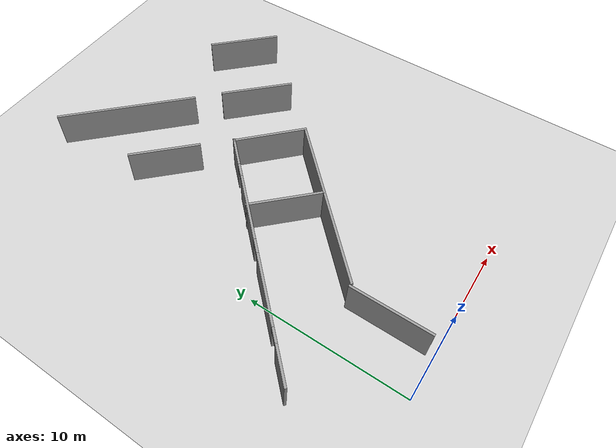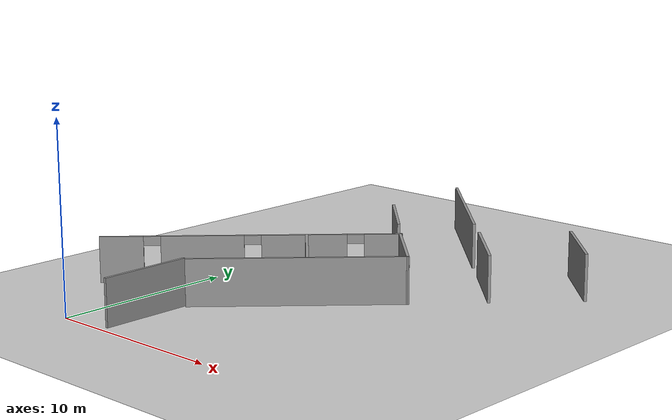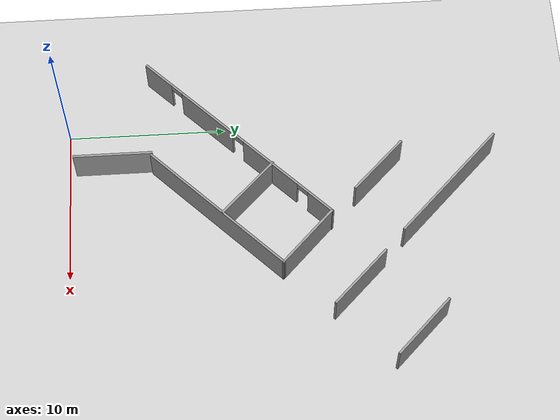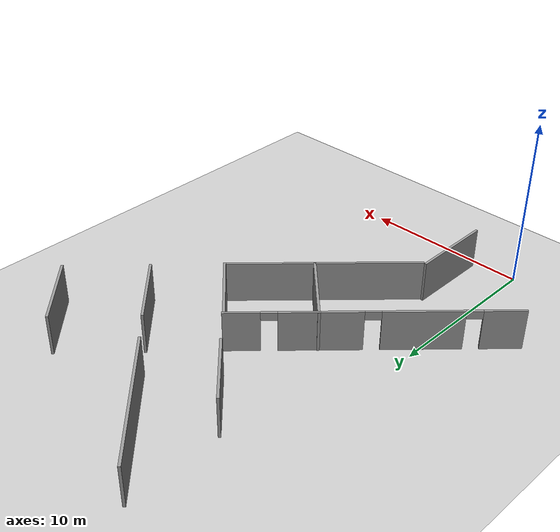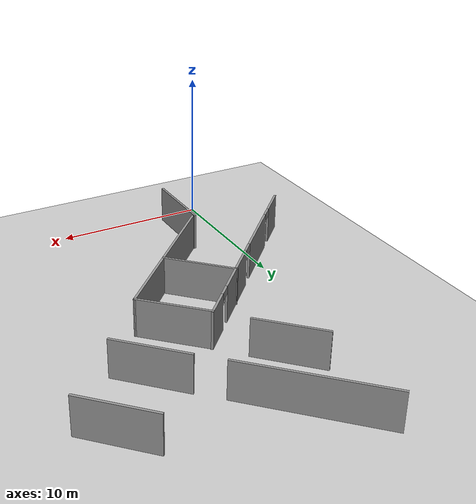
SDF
<sdf version="1.6">
 <world name="default">
  <model name="ground_plane">
   <static>1</static>
   <link name="link">
    <collision name="collision">
     <geometry><plane><normal>0 0 1</normal><size>100 100</size></plane></geometry>
     <surface>
      <contact><collide_bitmask>65535</collide_bitmask></contact>
      <friction><ode><mu>100</mu><mu2>50</mu2></ode></friction>
     </surface>
    </collision>
    <visual name="visual">
     <cast_shadows>0</cast_shadows>
     <geometry><plane><normal>0 0 1</normal><size>100 100</size></plane></geometry>
     <material>
      <script><uri>file://media/materials/scripts/gazebo.material</uri><name>Gazebo/Grey</name></script>
     </material>
    </visual>
   </link>
  </model>
  <model name="Level_1_with_doors">
   <link name="Wall_123">
    <pose>-2.14249 -19.6173 0 0 -0 1.5708</pose>
    <visual name="Wall_123_Visual">
     <pose>0 0 1.25 0 -0 0</pose>
     <geometry><box><size>5 0.15 2.5</size></box></geometry>
     <material>
      <script><uri>file://media/materials/scripts/gazebo.material</uri><name>Gazebo/Grey</name></script>
      <ambient>1 1 1 1</ambient>
      <shader type="pixel"/>
     </material>
     <meta><layer>0</layer></meta>
    </visual>
    <collision name="Wall_123_Collision">
     <pose>0 0 1.25 0 -0 0</pose>
     <geometry><box><size>5 0.15 2.5</size></box></geometry>
     <surface>
      <friction>
       <ode><mu>1</mu><mu2>1</mu2><fdir1>0 0 0</fdir1><slip1>0</slip1><slip2>0</slip2></ode>
       <torsional>
        <coefficient>1</coefficient>
        <patch_radius>0</patch_radius>
        <surface_radius>0</surface_radius>
        <use_patch_radius>1</use_patch_radius>
        <ode><slip>0</slip></ode>
       </torsional>
      </friction>
      <bounce><restitution_coefficient>0</restitution_coefficient><threshold>1e+06</threshold></bounce>
      <contact>
       <collide_without_contact>0</collide_without_contact>
       <collide_without_contact_bitmask>1</collide_without_contact_bitmask>
       <collide_bitmask>1</collide_bitmask>
       <ode>
        <soft_cfm>0</soft_cfm>
        <soft_erp>0.2</soft_erp>
        <kp>1e+13</kp>
        <kd>1</kd>
        <max_vel>0.01</max_vel>
        <min_depth>0</min_depth>
       </ode>
       <bullet>
        <split_impulse>1</split_impulse>
        <split_impulse_penetration_threshold>-0.01</split_impulse_penetration_threshold>
        <soft_cfm>0</soft_cfm>
        <soft_erp>0.2</soft_erp>
        <kp>1e+13</kp>
        <kd>1</kd>
       </bullet>
      </contact>
     </surface>
    </collision>
   </link>
   <link name="Wall_23">
    <pose>0.985639 1.35399 0 0 0 -0.780433</pose>
    <visual name="Wall_23_Visual">
     <pose>0 0 1.25 0 -0 0</pose>
     <geometry><box><size>8.95638 0.15 2.5</size></box></geometry>
     <material>
      <script><uri>file://media/materials/scripts/gazebo.material</uri><name>Gazebo/Grey</name></script>
      <ambient>1 1 1 1</ambient>
      <shader type="pixel"/>
     </material>
     <meta><layer>0</layer></meta>
    </visual>
    <collision name="Wall_23_Collision">
     <pose>0 0 1.25 0 -0 0</pose>
     <geometry><box><size>8.95638 0.15 2.5</size></box></geometry>
     <surface>
      <friction>
       <ode><mu>1</mu><mu2>1</mu2><fdir1>0 0 0</fdir1><slip1>0</slip1><slip2>0</slip2></ode>
       <torsional>
        <coefficient>1</coefficient>
        <patch_radius>0</patch_radius>
        <surface_radius>0</surface_radius>
        <use_patch_radius>1</use_patch_radius>
        <ode><slip>0</slip></ode>
       </torsional>
      </friction>
      <bounce><restitution_coefficient>0</restitution_coefficient><threshold>1e+06</threshold></bounce>
      <contact>
       <collide_without_contact>0</collide_without_contact>
       <collide_without_contact_bitmask>1</collide_without_contact_bitmask>
       <collide_bitmask>1</collide_bitmask>
       <ode>
        <soft_cfm>0</soft_cfm>
        <soft_erp>0.2</soft_erp>
        <kp>1e+13</kp>
        <kd>1</kd>
        <max_vel>0.01</max_vel>
        <min_depth>0</min_depth>
       </ode>
       <bullet>
        <split_impulse>1</split_impulse>
        <split_impulse_penetration_threshold>-0.01</split_impulse_penetration_threshold>
        <soft_cfm>0</soft_cfm>
        <soft_erp>0.2</soft_erp>
        <kp>1e+13</kp>
        <kd>1</kd>
       </bullet>
      </contact>
     </surface>
    </collision>
   </link>
   <link name="Wall_35">
    <pose>7.13868 -4.69114 0 0 -0 2.35619</pose>
    <visual name="Wall_35_Visual">
     <pose>0 0 1.25 0 -0 0</pose>
     <geometry><box><size>4.75 0.15 2.5</size></box></geometry>
     <material>
      <script><uri>file://media/materials/scripts/gazebo.material</uri><name>Gazebo/Grey</name></script>
      <ambient>1 1 1 1</ambient>
      <shader type="pixel"/>
     </material>
     <meta><layer>0</layer></meta>
    </visual>
    <collision name="Wall_35_Collision">
     <pose>0 0 1.25 0 -0 0</pose>
     <geometry><box><size>4.75 0.15 2.5</size></box></geometry>
     <surface>
      <friction>
       <ode><mu>1</mu><mu2>1</mu2><fdir1>0 0 0</fdir1><slip1>0</slip1><slip2>0</slip2></ode>
       <torsional>
        <coefficient>1</coefficient>
        <patch_radius>0</patch_radius>
        <surface_radius>0</surface_radius>
        <use_patch_radius>1</use_patch_radius>
        <ode><slip>0</slip></ode>
       </torsional>
      </friction>
      <bounce><restitution_coefficient>0</restitution_coefficient><threshold>1e+06</threshold></bounce>
      <contact>
       <collide_without_contact>0</collide_without_contact>
       <collide_without_contact_bitmask>1</collide_without_contact_bitmask>
       <collide_bitmask>1</collide_bitmask>
       <ode>
        <soft_cfm>0</soft_cfm>
        <soft_erp>0.2</soft_erp>
        <kp>1e+13</kp>
        <kd>1</kd>
        <max_vel>0.01</max_vel>
        <min_depth>0</min_depth>
       </ode>
       <bullet>
        <split_impulse>1</split_impulse>
        <split_impulse_penetration_threshold>-0.01</split_impulse_penetration_threshold>
        <soft_cfm>0</soft_cfm>
        <soft_erp>0.2</soft_erp>
        <kp>1e+13</kp>
        <kd>1</kd>
       </bullet>
      </contact>
     </surface>
    </collision>
   </link>
   <link name="Wall_44">
    <pose>10.5913 -1.18716 0 0 0 -0.785398</pose>
    <visual name="Wall_44_Visual">
     <pose>0 0 1.25 0 -0 0</pose>
     <geometry><box><size>4.75 0.15 2.5</size></box></geometry>
     <material>
      <script><uri>file://media/materials/scripts/gazebo.material</uri><name>Gazebo/Grey</name></script>
      <ambient>1 1 1 1</ambient>
      <shader type="pixel"/>
     </material>
     <meta><layer>0</layer></meta>
    </visual>
    <collision name="Wall_44_Collision">
     <pose>0 0 1.25 0 -0 0</pose>
     <geometry><box><size>4.75 0.15 2.5</size></box></geometry>
     <surface>
      <friction>
       <ode><mu>1</mu><mu2>1</mu2><fdir1>0 0 0</fdir1><slip1>0</slip1><slip2>0</slip2></ode>
       <torsional>
        <coefficient>1</coefficient>
        <patch_radius>0</patch_radius>
        <surface_radius>0</surface_radius>
        <use_patch_radius>1</use_patch_radius>
        <ode><slip>0</slip></ode>
       </torsional>
      </friction>
      <bounce><restitution_coefficient>0</restitution_coefficient><threshold>1e+06</threshold></bounce>
      <contact>
       <collide_without_contact>0</collide_without_contact>
       <collide_without_contact_bitmask>1</collide_without_contact_bitmask>
       <collide_bitmask>1</collide_bitmask>
       <ode>
        <soft_cfm>0</soft_cfm>
        <soft_erp>0.2</soft_erp>
        <kp>1e+13</kp>
        <kd>1</kd>
        <max_vel>0.01</max_vel>
        <min_depth>0</min_depth>
       </ode>
       <bullet>
        <split_impulse>1</split_impulse>
        <split_impulse_penetration_threshold>-0.01</split_impulse_penetration_threshold>
        <soft_cfm>0</soft_cfm>
        <soft_erp>0.2</soft_erp>
        <kp>1e+13</kp>
        <kd>1</kd>
       </bullet>
      </contact>
     </surface>
    </collision>
   </link>
   <link name="Wall_70">
    <pose>1.98222 -13.2281 0 0 -0 0.785398</pose>
    <visual name="Wall_70_Visual">
     <pose>0 0 1.25 0 -0 0</pose>
     <geometry><box><size>11.25 0.15 2.5</size></box></geometry>
     <material>
      <script><uri>file://media/materials/scripts/gazebo.material</uri><name>Gazebo/Grey</name></script>
      <ambient>1 1 1 1</ambient>
      <shader type="pixel"/>
     </material>
     <meta><layer>0</layer></meta>
    </visual>
    <collision name="Wall_70_Collision">
     <pose>0 0 1.25 0 -0 0</pose>
     <geometry><box><size>11.25 0.15 2.5</size></box></geometry>
     <surface>
      <friction>
       <ode><mu>1</mu><mu2>1</mu2><fdir1>0 0 0</fdir1><slip1>0</slip1><slip2>0</slip2></ode>
       <torsional>
        <coefficient>1</coefficient>
        <patch_radius>0</patch_radius>
        <surface_radius>0</surface_radius>
        <use_patch_radius>1</use_patch_radius>
        <ode><slip>0</slip></ode>
       </torsional>
      </friction>
      <bounce><restitution_coefficient>0</restitution_coefficient><threshold>1e+06</threshold></bounce>
      <contact>
       <collide_without_contact>0</collide_without_contact>
       <collide_without_contact_bitmask>1</collide_without_contact_bitmask>
       <collide_bitmask>1</collide_bitmask>
       <ode>
        <soft_cfm>0</soft_cfm>
        <soft_erp>0.2</soft_erp>
        <kp>1e+13</kp>
        <kd>1</kd>
        <max_vel>0.01</max_vel>
        <min_depth>0</min_depth>
       </ode>
       <bullet>
        <split_impulse>1</split_impulse>
        <split_impulse_penetration_threshold>-0.01</split_impulse_penetration_threshold>
        <soft_cfm>0</soft_cfm>
        <soft_erp>0.2</soft_erp>
        <kp>1e+13</kp>
        <kd>1</kd>
       </bullet>
      </contact>
     </surface>
    </collision>
   </link>
   <link name="Wall_71">
    <pose>4.26562 -7.72143 0 0 -0 2.37443</pose>
    <visual name="Wall_71_Visual">
     <pose>0 0 1.25 0 -0 0</pose>
     <geometry><box><size>4.7092 0.15 2.5</size></box></geometry>
     <material>
      <script><uri>file://media/materials/scripts/gazebo.material</uri><name>Gazebo/Grey</name></script>
      <ambient>1 1 1 1</ambient>
      <shader type="pixel"/>
     </material>
     <meta><layer>0</layer></meta>
    </visual>
    <collision name="Wall_71_Collision">
     <pose>0 0 1.25 0 -0 0</pose>
     <geometry><box><size>4.7092 0.15 2.5</size></box></geometry>
     <surface>
      <friction>
       <ode><mu>1</mu><mu2>1</mu2><fdir1>0 0 0</fdir1><slip1>0</slip1><slip2>0</slip2></ode>
       <torsional>
        <coefficient>1</coefficient>
        <patch_radius>0</patch_radius>
        <surface_radius>0</surface_radius>
        <use_patch_radius>1</use_patch_radius>
        <ode><slip>0</slip></ode>
       </torsional>
      </friction>
      <bounce><restitution_coefficient>0</restitution_coefficient><threshold>1e+06</threshold></bounce>
      <contact>
       <collide_without_contact>0</collide_without_contact>
       <collide_without_contact_bitmask>1</collide_without_contact_bitmask>
       <collide_bitmask>1</collide_bitmask>
       <ode>
        <soft_cfm>0</soft_cfm>
        <soft_erp>0.2</soft_erp>
        <kp>1e+13</kp>
        <kd>1</kd>
        <max_vel>0.01</max_vel>
        <min_depth>0</min_depth>
       </ode>
       <bullet>
        <split_impulse>1</split_impulse>
        <split_impulse_penetration_threshold>-0.01</split_impulse_penetration_threshold>
        <soft_cfm>0</soft_cfm>
        <soft_erp>0.2</soft_erp>
        <kp>1e+13</kp>
        <kd>1</kd>
       </bullet>
      </contact>
     </surface>
    </collision>
   </link>
   <link name="Wall_72">
    <pose>-2.96455 -11.6989 0 0 0 -2.35619</pose>
    <visual name="Wall_72_Visual_1">
     <pose>-2.80148 0 1.25 0 -0 0</pose>
     <geometry><box><size>4.54489 0.15 2.5</size></box></geometry>
     <material>
      <script><uri>file://media/materials/scripts/gazebo.material</uri><name>Gazebo/Grey</name></script>
      <ambient>1 1 1 1</ambient>
      <shader type="pixel"/>
     </material>
     <meta><layer>0</layer></meta>
    </visual>
    <visual name="Wall_72_Visual_2">
     <pose>2.57432 0 1.25 0 -0 0</pose>
     <geometry><box><size>4.4067 0.15 2.5</size></box></geometry>
     <material>
      <script><uri>file://media/materials/scripts/gazebo.material</uri><name>Gazebo/Grey</name></script>
      <ambient>1 1 1 1</ambient>
      <shader type="pixel"/>
     </material>
     <meta><layer>0</layer></meta>
    </visual>
    <visual name="Wall_72_Visual_6">
     <pose>5.22767 0 2.25 0 -0 0</pose>
     <geometry><box><size>0.9 0.15 0.5</size></box></geometry>
     <material>
      <script><uri>file://media/materials/scripts/gazebo.material</uri><name>Gazebo/Grey</name></script>
      <ambient>1 1 1 1</ambient>
      <shader type="pixel"/>
     </material>
     <meta><layer>0</layer></meta>
    </visual>
    <visual name="Wall_72_Visual_3">
     <pose>6.83883 0 1.25 0 -0 0</pose>
     <geometry><box><size>2.32233 0.15 2.5</size></box></geometry>
     <material>
      <script><uri>file://media/materials/scripts/gazebo.material</uri><name>Gazebo/Grey</name></script>
      <ambient>1 1 1 1</ambient>
      <shader type="pixel"/>
     </material>
     <meta><layer>0</layer></meta>
    </visual>
    <visual name="Wall_72_Visual_0">
     <pose>-6.98696 0 1.25 0 -0 0</pose>
     <geometry><box><size>2.02608 0.15 2.5</size></box></geometry>
     <material>
      <script><uri>file://media/materials/scripts/gazebo.material</uri><name>Gazebo/Grey</name></script>
      <ambient>1 1 1 1</ambient>
      <shader type="pixel"/>
     </material>
     <meta><layer>0</layer></meta>
    </visual>
    <visual name="Wall_72_Visual_4">
     <pose>-5.52392 0 2.25 0 -0 0</pose>
     <geometry><box><size>0.9 0.15 0.5</size></box></geometry>
     <material>
      <script><uri>file://media/materials/scripts/gazebo.material</uri><name>Gazebo/Grey</name></script>
      <ambient>1 1 1 1</ambient>
      <shader type="pixel"/>
     </material>
     <meta><layer>0</layer></meta>
    </visual>
    <visual name="Wall_72_Visual_5">
     <pose>-0.07903 0 2.25 0 -0 0</pose>
     <geometry><box><size>0.9 0.15 0.5</size></box></geometry>
     <material>
      <script><uri>file://media/materials/scripts/gazebo.material</uri><name>Gazebo/Grey</name></script>
      <ambient>1 1 1 1</ambient>
      <shader type="pixel"/>
     </material>
     <meta><layer>0</layer></meta>
    </visual>
    <collision name="Wall_72_Collision_6">
     <pose>5.22767 0 2.25 0 -0 0</pose>
     <geometry><box><size>0.9 0.15 0.5</size></box></geometry>
     <surface>
      <friction>
       <ode><mu>1</mu><mu2>1</mu2><fdir1>0 0 0</fdir1><slip1>0</slip1><slip2>0</slip2></ode>
       <torsional>
        <coefficient>1</coefficient>
        <patch_radius>0</patch_radius>
        <surface_radius>0</surface_radius>
        <use_patch_radius>1</use_patch_radius>
        <ode><slip>0</slip></ode>
       </torsional>
      </friction>
      <bounce><restitution_coefficient>0</restitution_coefficient><threshold>1e+06</threshold></bounce>
      <contact>
       <collide_without_contact>0</collide_without_contact>
       <collide_without_contact_bitmask>1</collide_without_contact_bitmask>
       <collide_bitmask>1</collide_bitmask>
       <ode>
        <soft_cfm>0</soft_cfm>
        <soft_erp>0.2</soft_erp>
        <kp>1e+13</kp>
        <kd>1</kd>
        <max_vel>0.01</max_vel>
        <min_depth>0</min_depth>
       </ode>
       <bullet>
        <split_impulse>1</split_impulse>
        <split_impulse_penetration_threshold>-0.01</split_impulse_penetration_threshold>
        <soft_cfm>0</soft_cfm>
        <soft_erp>0.2</soft_erp>
        <kp>1e+13</kp>
        <kd>1</kd>
       </bullet>
      </contact>
     </surface>
    </collision>
    <collision name="Wall_72_Collision_1">
     <pose>-2.80148 0 1.25 0 -0 0</pose>
     <geometry><box><size>4.54489 0.15 2.5</size></box></geometry>
     <surface>
      <friction>
       <ode><mu>1</mu><mu2>1</mu2><fdir1>0 0 0</fdir1><slip1>0</slip1><slip2>0</slip2></ode>
       <torsional>
        <coefficient>1</coefficient>
        <patch_radius>0</patch_radius>
        <surface_radius>0</surface_radius>
        <use_patch_radius>1</use_patch_radius>
        <ode><slip>0</slip></ode>
       </torsional>
      </friction>
      <bounce><restitution_coefficient>0</restitution_coefficient><threshold>1e+06</threshold></bounce>
      <contact>
       <collide_without_contact>0</collide_without_contact>
       <collide_without_contact_bitmask>1</collide_without_contact_bitmask>
       <collide_bitmask>1</collide_bitmask>
       <ode>
        <soft_cfm>0</soft_cfm>
        <soft_erp>0.2</soft_erp>
        <kp>1e+13</kp>
        <kd>1</kd>
        <max_vel>0.01</max_vel>
        <min_depth>0</min_depth>
       </ode>
       <bullet>
        <split_impulse>1</split_impulse>
        <split_impulse_penetration_threshold>-0.01</split_impulse_penetration_threshold>
        <soft_cfm>0</soft_cfm>
        <soft_erp>0.2</soft_erp>
        <kp>1e+13</kp>
        <kd>1</kd>
       </bullet>
      </contact>
     </surface>
    </collision>
    <collision name="Wall_72_Collision_2">
     <pose>2.57432 0 1.25 0 -0 0</pose>
     <geometry><box><size>4.4067 0.15 2.5</size></box></geometry>
     <surface>
      <friction>
       <ode><mu>1</mu><mu2>1</mu2><fdir1>0 0 0</fdir1><slip1>0</slip1><slip2>0</slip2></ode>
       <torsional>
        <coefficient>1</coefficient>
        <patch_radius>0</patch_radius>
        <surface_radius>0</surface_radius>
        <use_patch_radius>1</use_patch_radius>
        <ode><slip>0</slip></ode>
       </torsional>
      </friction>
      <bounce><restitution_coefficient>0</restitution_coefficient><threshold>1e+06</threshold></bounce>
      <contact>
       <collide_without_contact>0</collide_without_contact>
       <collide_without_contact_bitmask>1</collide_without_contact_bitmask>
       <collide_bitmask>1</collide_bitmask>
       <ode>
        <soft_cfm>0</soft_cfm>
        <soft_erp>0.2</soft_erp>
        <kp>1e+13</kp>
        <kd>1</kd>
        <max_vel>0.01</max_vel>
        <min_depth>0</min_depth>
       </ode>
       <bullet>
        <split_impulse>1</split_impulse>
        <split_impulse_penetration_threshold>-0.01</split_impulse_penetration_threshold>
        <soft_cfm>0</soft_cfm>
        <soft_erp>0.2</soft_erp>
        <kp>1e+13</kp>
        <kd>1</kd>
       </bullet>
      </contact>
     </surface>
    </collision>
    <collision name="Wall_72_Collision_3">
     <pose>6.83883 0 1.25 0 -0 0</pose>
     <geometry><box><size>2.32233 0.15 2.5</size></box></geometry>
     <surface>
      <friction>
       <ode><mu>1</mu><mu2>1</mu2><fdir1>0 0 0</fdir1><slip1>0</slip1><slip2>0</slip2></ode>
       <torsional>
        <coefficient>1</coefficient>
        <patch_radius>0</patch_radius>
        <surface_radius>0</surface_radius>
        <use_patch_radius>1</use_patch_radius>
        <ode><slip>0</slip></ode>
       </torsional>
      </friction>
      <bounce><restitution_coefficient>0</restitution_coefficient><threshold>1e+06</threshold></bounce>
      <contact>
       <collide_without_contact>0</collide_without_contact>
       <collide_without_contact_bitmask>1</collide_without_contact_bitmask>
       <collide_bitmask>1</collide_bitmask>
       <ode>
        <soft_cfm>0</soft_cfm>
        <soft_erp>0.2</soft_erp>
        <kp>1e+13</kp>
        <kd>1</kd>
        <max_vel>0.01</max_vel>
        <min_depth>0</min_depth>
       </ode>
       <bullet>
        <split_impulse>1</split_impulse>
        <split_impulse_penetration_threshold>-0.01</split_impulse_penetration_threshold>
        <soft_cfm>0</soft_cfm>
        <soft_erp>0.2</soft_erp>
        <kp>1e+13</kp>
        <kd>1</kd>
       </bullet>
      </contact>
     </surface>
    </collision>
    <collision name="Wall_72_Collision_4">
     <pose>-5.52392 0 2.25 0 -0 0</pose>
     <geometry><box><size>0.9 0.15 0.5</size></box></geometry>
     <surface>
      <friction>
       <ode><mu>1</mu><mu2>1</mu2><fdir1>0 0 0</fdir1><slip1>0</slip1><slip2>0</slip2></ode>
       <torsional>
        <coefficient>1</coefficient>
        <patch_radius>0</patch_radius>
        <surface_radius>0</surface_radius>
        <use_patch_radius>1</use_patch_radius>
        <ode><slip>0</slip></ode>
       </torsional>
      </friction>
      <bounce><restitution_coefficient>0</restitution_coefficient><threshold>1e+06</threshold></bounce>
      <contact>
       <collide_without_contact>0</collide_without_contact>
       <collide_without_contact_bitmask>1</collide_without_contact_bitmask>
       <collide_bitmask>1</collide_bitmask>
       <ode>
        <soft_cfm>0</soft_cfm>
        <soft_erp>0.2</soft_erp>
        <kp>1e+13</kp>
        <kd>1</kd>
        <max_vel>0.01</max_vel>
        <min_depth>0</min_depth>
       </ode>
       <bullet>
        <split_impulse>1</split_impulse>
        <split_impulse_penetration_threshold>-0.01</split_impulse_penetration_threshold>
        <soft_cfm>0</soft_cfm>
        <soft_erp>0.2</soft_erp>
        <kp>1e+13</kp>
        <kd>1</kd>
       </bullet>
      </contact>
     </surface>
    </collision>
    <collision name="Wall_72_Collision_5">
     <pose>-0.07903 0 2.25 0 -0 0</pose>
     <geometry><box><size>0.9 0.15 0.5</size></box></geometry>
     <surface>
      <friction>
       <ode><mu>1</mu><mu2>1</mu2><fdir1>0 0 0</fdir1><slip1>0</slip1><slip2>0</slip2></ode>
       <torsional>
        <coefficient>1</coefficient>
        <patch_radius>0</patch_radius>
        <surface_radius>0</surface_radius>
        <use_patch_radius>1</use_patch_radius>
        <ode><slip>0</slip></ode>
       </torsional>
      </friction>
      <bounce><restitution_coefficient>0</restitution_coefficient><threshold>1e+06</threshold></bounce>
      <contact>
       <collide_without_contact>0</collide_without_contact>
       <collide_without_contact_bitmask>1</collide_without_contact_bitmask>
       <collide_bitmask>1</collide_bitmask>
       <ode>
        <soft_cfm>0</soft_cfm>
        <soft_erp>0.2</soft_erp>
        <kp>1e+13</kp>
        <kd>1</kd>
        <max_vel>0.01</max_vel>
        <min_depth>0</min_depth>
       </ode>
       <bullet>
        <split_impulse>1</split_impulse>
        <split_impulse_penetration_threshold>-0.01</split_impulse_penetration_threshold>
        <soft_cfm>0</soft_cfm>
        <soft_erp>0.2</soft_erp>
        <kp>1e+13</kp>
        <kd>1</kd>
       </bullet>
      </contact>
     </surface>
    </collision>
    <collision name="Wall_72_Collision_0">
     <pose>-6.98696 0 1.25 0 -0 0</pose>
     <geometry><box><size>2.02608 0.15 2.5</size></box></geometry>
     <surface>
      <friction>
       <ode><mu>1</mu><mu2>1</mu2><fdir1>0 0 0</fdir1><slip1>0</slip1><slip2>0</slip2></ode>
       <torsional>
        <coefficient>1</coefficient>
        <patch_radius>0</patch_radius>
        <surface_radius>0</surface_radius>
        <use_patch_radius>1</use_patch_radius>
        <ode><slip>0</slip></ode>
       </torsional>
      </friction>
      <bounce><restitution_coefficient>0</restitution_coefficient><threshold>1e+06</threshold></bounce>
      <contact>
       <collide_without_contact>0</collide_without_contact>
       <collide_without_contact_bitmask>1</collide_without_contact_bitmask>
       <collide_bitmask>1</collide_bitmask>
       <ode>
        <soft_cfm>0</soft_cfm>
        <soft_erp>0.2</soft_erp>
        <kp>1e+13</kp>
        <kd>1</kd>
        <max_vel>0.01</max_vel>
        <min_depth>0</min_depth>
       </ode>
       <bullet>
        <split_impulse>1</split_impulse>
        <split_impulse_penetration_threshold>-0.01</split_impulse_penetration_threshold>
        <soft_cfm>0</soft_cfm>
        <soft_erp>0.2</soft_erp>
        <kp>1e+13</kp>
        <kd>1</kd>
       </bullet>
      </contact>
     </surface>
    </collision>
   </link>
   <link name="Wall_75">
    <pose>-0.436781 -2.98199 0 0 0 -0.785398</pose>
    <visual name="Wall_75_Visual">
     <pose>0 0 1.25 0 -0 0</pose>
     <geometry><box><size>4.5 0.15 2.5</size></box></geometry>
     <material>
      <script><uri>file://media/materials/scripts/gazebo.material</uri><name>Gazebo/Grey</name></script>
      <ambient>1 1 1 1</ambient>
      <shader type="pixel"/>
     </material>
     <meta><layer>0</layer></meta>
    </visual>
    <collision name="Wall_75_Collision">
     <pose>0 0 1.25 0 -0 0</pose>
     <geometry><box><size>4.5 0.15 2.5</size></box></geometry>
     <surface>
      <friction>
       <ode><mu>1</mu><mu2>1</mu2><fdir1>0 0 0</fdir1><slip1>0</slip1><slip2>0</slip2></ode>
       <torsional>
        <coefficient>1</coefficient>
        <patch_radius>0</patch_radius>
        <surface_radius>0</surface_radius>
        <use_patch_radius>1</use_patch_radius>
        <ode><slip>0</slip></ode>
       </torsional>
      </friction>
      <bounce><restitution_coefficient>0</restitution_coefficient><threshold>1e+06</threshold></bounce>
      <contact>
       <collide_without_contact>0</collide_without_contact>
       <collide_without_contact_bitmask>1</collide_without_contact_bitmask>
       <collide_bitmask>1</collide_bitmask>
       <ode>
        <soft_cfm>0</soft_cfm>
        <soft_erp>0.2</soft_erp>
        <kp>1e+13</kp>
        <kd>1</kd>
        <max_vel>0.01</max_vel>
        <min_depth>0</min_depth>
       </ode>
       <bullet>
        <split_impulse>1</split_impulse>
        <split_impulse_penetration_threshold>-0.01</split_impulse_penetration_threshold>
        <soft_cfm>0</soft_cfm>
        <soft_erp>0.2</soft_erp>
        <kp>1e+13</kp>
        <kd>1</kd>
       </bullet>
      </contact>
     </surface>
    </collision>
   </link>
   <link name="Wall_84">
    <pose>0.689584 -11.221 0 0 0 -0.785398</pose>
    <visual name="Wall_84_Visual">
     <pose>0 0 1.25 0 -0 0</pose>
     <geometry><box><size>4.75 0.15 2.5</size></box></geometry>
     <material>
      <script><uri>file://media/materials/scripts/gazebo.material</uri><name>Gazebo/Grey</name></script>
      <ambient>1 1 1 1</ambient>
      <shader type="pixel"/>
     </material>
     <meta><layer>0</layer></meta>
    </visual>
    <collision name="Wall_84_Collision">
     <pose>0 0 1.25 0 -0 0</pose>
     <geometry><box><size>4.75 0.15 2.5</size></box></geometry>
     <surface>
      <friction>
       <ode><mu>1</mu><mu2>1</mu2><fdir1>0 0 0</fdir1><slip1>0</slip1><slip2>0</slip2></ode>
       <torsional>
        <coefficient>1</coefficient>
        <patch_radius>0</patch_radius>
        <surface_radius>0</surface_radius>
        <use_patch_radius>1</use_patch_radius>
        <ode><slip>0</slip></ode>
       </torsional>
      </friction>
      <bounce><restitution_coefficient>0</restitution_coefficient><threshold>1e+06</threshold></bounce>
      <contact>
       <collide_without_contact>0</collide_without_contact>
       <collide_without_contact_bitmask>1</collide_without_contact_bitmask>
       <collide_bitmask>1</collide_bitmask>
       <ode>
        <soft_cfm>0</soft_cfm>
        <soft_erp>0.2</soft_erp>
        <kp>1e+13</kp>
        <kd>1</kd>
        <max_vel>0.01</max_vel>
        <min_depth>0</min_depth>
       </ode>
       <bullet>
        <split_impulse>1</split_impulse>
        <split_impulse_penetration_threshold>-0.01</split_impulse_penetration_threshold>
        <soft_cfm>0</soft_cfm>
        <soft_erp>0.2</soft_erp>
        <kp>1e+13</kp>
        <kd>1</kd>
       </bullet>
      </contact>
     </surface>
    </collision>
   </link>
   <static>1</static>
   <pose>4.79959 22.5424 0 0 -0 0</pose>
  </model>
 </world>
</sdf>
